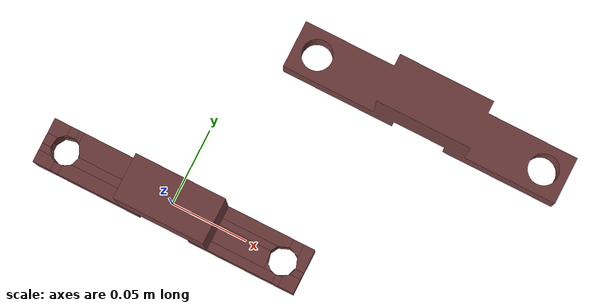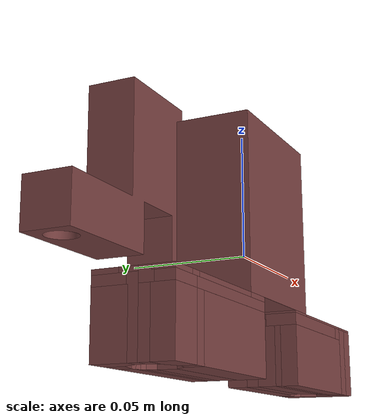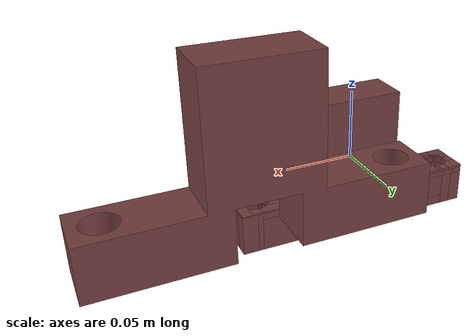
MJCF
<?xml version='1.0' encoding='utf-8'?>
<mujoco model="obj2">
  <asset>
    <mesh name="obj2" file="obj2.obj" scale="0.001 0.001 0.001" />
    <material name="mat2" rgba="0.45098 0.24314 0.24314 1" />
    <mesh name="obj1_p0" file="obj2_part_0.obj" scale="0.001 0.001 0.001" />
    <mesh name="obj1_p1" file="obj2_part_1.obj" scale="0.001 0.001 0.001" />
    <mesh name="obj1_p2" file="obj2_part_2.obj" scale="0.001 0.001 0.001" />
    <mesh name="obj1_p3" file="obj2_part_3.obj" scale="0.001 0.001 0.001" />
    <mesh name="obj1_p4" file="obj2_part_4.obj" scale="0.001 0.001 0.001" />
    <mesh name="obj1_p5" file="obj2_part_5.obj" scale="0.001 0.001 0.001" />
    <mesh name="obj1_p6" file="obj2_part_6.obj" scale="0.001 0.001 0.001" />
    <mesh name="obj1_p7" file="obj2_part_7.obj" scale="0.001 0.001 0.001" />
    <mesh name="obj1_p8" file="obj2_part_8.obj" scale="0.001 0.001 0.001" />
    <mesh name="obj1_p9" file="obj2_part_9.obj" scale="0.001 0.001 0.001" />
    <mesh name="obj1_p10" file="obj2_part_10.obj" scale="0.001 0.001 0.001" />
    <mesh name="obj1_p11" file="obj2_part_11.obj" scale="0.001 0.001 0.001" />
    <mesh name="obj1_p12" file="obj2_part_12.obj" scale="0.001 0.001 0.001" />
    <mesh name="obj1_p13" file="obj2_part_13.obj" scale="0.001 0.001 0.001" />
    <mesh name="obj1_p14" file="obj2_part_14.obj" scale="0.001 0.001 0.001" />
    <mesh name="obj1_p15" file="obj2_part_15.obj" scale="0.001 0.001 0.001" />
    <mesh name="obj1_p16" file="obj2_part_16.obj" scale="0.001 0.001 0.001" />
    <mesh name="obj1_p17" file="obj2_part_17.obj" scale="0.001 0.001 0.001" />
    <mesh name="obj1_p18" file="obj2_part_18.obj" scale="0.001 0.001 0.001" />
    <mesh name="obj1_p19" file="obj2_part_19.obj" scale="0.001 0.001 0.001" />
    <mesh name="obj1_p20" file="obj2_part_20.obj" scale="0.001 0.001 0.001" />
    <mesh name="obj1_p21" file="obj2_part_21.obj" scale="0.001 0.001 0.001" />
    <mesh name="obj1_p22" file="obj2_part_22.obj" scale="0.001 0.001 0.001" />
    <mesh name="obj1_p23" file="obj2_part_23.obj" scale="0.001 0.001 0.001" />
    <mesh name="obj1_p24" file="obj2_part_24.obj" scale="0.001 0.001 0.001" />
    <mesh name="obj1_p25" file="obj2_part_25.obj" scale="0.001 0.001 0.001" />
    <mesh name="obj1_p26" file="obj2_part_26.obj" scale="0.001 0.001 0.001" />
    <mesh name="obj1_p27" file="obj2_part_27.obj" scale="0.001 0.001 0.001" />
    <mesh name="obj1_p28" file="obj2_part_28.obj" scale="0.001 0.001 0.001" />
    <mesh name="obj1_p29" file="obj2_part_29.obj" scale="0.001 0.001 0.001" />
    <mesh name="obj1_p30" file="obj2_part_30.obj" scale="0.001 0.001 0.001" />
    <mesh name="obj1_p31" file="obj2_part_31.obj" scale="0.001 0.001 0.001" />
    <mesh name="obj1_p32" file="obj2_part_32.obj" scale="0.001 0.001 0.001" />
    <mesh name="obj1_p33" file="obj2_part_33.obj" scale="0.001 0.001 0.001" />
    <mesh name="obj1_p34" file="obj2_part_34.obj" scale="0.001 0.001 0.001" />
    <mesh name="obj1_p35" file="obj2_part_35.obj" scale="0.001 0.001 0.001" />
    <mesh name="obj1_p36" file="obj2_part_36.obj" scale="0.001 0.001 0.001" />
    <mesh name="obj1_p37" file="obj2_part_37.obj" scale="0.001 0.001 0.001" />
    <mesh name="obj1_p38" file="obj2_part_38.obj" scale="0.001 0.001 0.001" />
    <mesh name="obj1_p39" file="obj2_part_39.obj" scale="0.001 0.001 0.001" />
    <mesh name="obj1_p40" file="obj2_part_40.obj" scale="0.001 0.001 0.001" />
    <mesh name="obj1_p41" file="obj2_part_41.obj" scale="0.001 0.001 0.001" />
    <mesh name="obj1_p42" file="obj2_part_42.obj" scale="0.001 0.001 0.001" />
    <mesh name="obj1_p43" file="obj2_part_43.obj" scale="0.001 0.001 0.001" />
    <mesh name="obj1_p44" file="obj2_part_44.obj" scale="0.001 0.001 0.001" />
    <mesh name="obj1_p45" file="obj2_part_45.obj" scale="0.001 0.001 0.001" />
    <mesh name="obj1_p46" file="obj2_part_46.obj" scale="0.001 0.001 0.001" />
    <mesh name="obj1_p47" file="obj2_part_47.obj" scale="0.001 0.001 0.001" />
    <mesh name="obj1_p48" file="obj2_part_48.obj" scale="0.001 0.001 0.001" />
    <mesh name="obj1_p49" file="obj2_part_49.obj" scale="0.001 0.001 0.001" />
    <mesh name="obj1_p50" file="obj2_part_50.obj" scale="0.001 0.001 0.001" />
    <mesh name="obj1_p51" file="obj2_part_51.obj" scale="0.001 0.001 0.001" />
    <mesh name="obj1_p52" file="obj2_part_52.obj" scale="0.001 0.001 0.001" />
    <mesh name="obj1_p53" file="obj2_part_53.obj" scale="0.001 0.001 0.001" />
    <mesh name="obj1_p54" file="obj2_part_54.obj" scale="0.001 0.001 0.001" />
    <mesh name="obj1_p55" file="obj2_part_55.obj" scale="0.001 0.001 0.001" />
    <mesh name="obj1_p56" file="obj2_part_56.obj" scale="0.001 0.001 0.001" />
    <mesh name="obj1_p57" file="obj2_part_57.obj" scale="0.001 0.001 0.001" />
    <mesh name="obj1_p58" file="obj2_part_58.obj" scale="0.001 0.001 0.001" />
    <mesh name="obj1_p59" file="obj2_part_59.obj" scale="0.001 0.001 0.001" />
    <mesh name="obj1_p60" file="obj2_part_60.obj" scale="0.001 0.001 0.001" />
  </asset>
  <worldbody>
    <body>
      <body name="object">
        <inertial pos="0 0 0" mass="0.1" diaginertia="0.0001 0.0001 0.0001" />
        <geom name="visual" mesh="obj2" type="mesh" group="1" contype="0" conaffinity="0" material="mat2" />
        <geom name="col_0" mesh="obj1_p0" type="mesh" group="0" contype="1" conaffinity="1" friction="0.95 0.3 0.1" solimp="0.9 0.95 0.001" solref="0.02 1" condim="4" material="mat2" />
        <geom name="col_1" mesh="obj1_p1" type="mesh" group="0" contype="1" conaffinity="1" friction="0.95 0.3 0.1" solimp="0.9 0.95 0.001" solref="0.02 1" condim="4" material="mat2" />
        <geom name="col_2" mesh="obj1_p2" type="mesh" group="0" contype="1" conaffinity="1" friction="0.95 0.3 0.1" solimp="0.9 0.95 0.001" solref="0.02 1" condim="4" material="mat2" />
        <geom name="col_3" mesh="obj1_p3" type="mesh" group="0" contype="1" conaffinity="1" friction="0.95 0.3 0.1" solimp="0.9 0.95 0.001" solref="0.02 1" condim="4" material="mat2" />
        <geom name="col_4" mesh="obj1_p4" type="mesh" group="0" contype="1" conaffinity="1" friction="0.95 0.3 0.1" solimp="0.9 0.95 0.001" solref="0.02 1" condim="4" material="mat2" />
        <geom name="col_5" mesh="obj1_p5" type="mesh" group="0" contype="1" conaffinity="1" friction="0.95 0.3 0.1" solimp="0.9 0.95 0.001" solref="0.02 1" condim="4" material="mat2" />
        <geom name="col_6" mesh="obj1_p6" type="mesh" group="0" contype="1" conaffinity="1" friction="0.95 0.3 0.1" solimp="0.9 0.95 0.001" solref="0.02 1" condim="4" material="mat2" />
        <geom name="col_7" mesh="obj1_p7" type="mesh" group="0" contype="1" conaffinity="1" friction="0.95 0.3 0.1" solimp="0.9 0.95 0.001" solref="0.02 1" condim="4" material="mat2" />
        <geom name="col_8" mesh="obj1_p8" type="mesh" group="0" contype="1" conaffinity="1" friction="0.95 0.3 0.1" solimp="0.9 0.95 0.001" solref="0.02 1" condim="4" material="mat2" />
        <geom name="col_9" mesh="obj1_p9" type="mesh" group="0" contype="1" conaffinity="1" friction="0.95 0.3 0.1" solimp="0.9 0.95 0.001" solref="0.02 1" condim="4" material="mat2" />
        <geom name="col_10" mesh="obj1_p10" type="mesh" group="0" contype="1" conaffinity="1" friction="0.95 0.3 0.1" solimp="0.9 0.95 0.001" solref="0.02 1" condim="4" material="mat2" />
        <geom name="col_11" mesh="obj1_p11" type="mesh" group="0" contype="1" conaffinity="1" friction="0.95 0.3 0.1" solimp="0.9 0.95 0.001" solref="0.02 1" condim="4" material="mat2" />
        <geom name="col_12" mesh="obj1_p12" type="mesh" group="0" contype="1" conaffinity="1" friction="0.95 0.3 0.1" solimp="0.9 0.95 0.001" solref="0.02 1" condim="4" material="mat2" />
        <geom name="col_13" mesh="obj1_p13" type="mesh" group="0" contype="1" conaffinity="1" friction="0.95 0.3 0.1" solimp="0.9 0.95 0.001" solref="0.02 1" condim="4" material="mat2" />
        <geom name="col_14" mesh="obj1_p14" type="mesh" group="0" contype="1" conaffinity="1" friction="0.95 0.3 0.1" solimp="0.9 0.95 0.001" solref="0.02 1" condim="4" material="mat2" />
        <geom name="col_15" mesh="obj1_p15" type="mesh" group="0" contype="1" conaffinity="1" friction="0.95 0.3 0.1" solimp="0.9 0.95 0.001" solref="0.02 1" condim="4" material="mat2" />
        <geom name="col_16" mesh="obj1_p16" type="mesh" group="0" contype="1" conaffinity="1" friction="0.95 0.3 0.1" solimp="0.9 0.95 0.001" solref="0.02 1" condim="4" material="mat2" />
        <geom name="col_17" mesh="obj1_p17" type="mesh" group="0" contype="1" conaffinity="1" friction="0.95 0.3 0.1" solimp="0.9 0.95 0.001" solref="0.02 1" condim="4" material="mat2" />
        <geom name="col_18" mesh="obj1_p18" type="mesh" group="0" contype="1" conaffinity="1" friction="0.95 0.3 0.1" solimp="0.9 0.95 0.001" solref="0.02 1" condim="4" material="mat2" />
        <geom name="col_19" mesh="obj1_p19" type="mesh" group="0" contype="1" conaffinity="1" friction="0.95 0.3 0.1" solimp="0.9 0.95 0.001" solref="0.02 1" condim="4" material="mat2" />
        <geom name="col_20" mesh="obj1_p20" type="mesh" group="0" contype="1" conaffinity="1" friction="0.95 0.3 0.1" solimp="0.9 0.95 0.001" solref="0.02 1" condim="4" material="mat2" />
        <geom name="col_21" mesh="obj1_p21" type="mesh" group="0" contype="1" conaffinity="1" friction="0.95 0.3 0.1" solimp="0.9 0.95 0.001" solref="0.02 1" condim="4" material="mat2" />
        <geom name="col_22" mesh="obj1_p22" type="mesh" group="0" contype="1" conaffinity="1" friction="0.95 0.3 0.1" solimp="0.9 0.95 0.001" solref="0.02 1" condim="4" material="mat2" />
        <geom name="col_23" mesh="obj1_p23" type="mesh" group="0" contype="1" conaffinity="1" friction="0.95 0.3 0.1" solimp="0.9 0.95 0.001" solref="0.02 1" condim="4" material="mat2" />
        <geom name="col_24" mesh="obj1_p24" type="mesh" group="0" contype="1" conaffinity="1" friction="0.95 0.3 0.1" solimp="0.9 0.95 0.001" solref="0.02 1" condim="4" material="mat2" />
        <geom name="col_25" mesh="obj1_p25" type="mesh" group="0" contype="1" conaffinity="1" friction="0.95 0.3 0.1" solimp="0.9 0.95 0.001" solref="0.02 1" condim="4" material="mat2" />
        <geom name="col_26" mesh="obj1_p26" type="mesh" group="0" contype="1" conaffinity="1" friction="0.95 0.3 0.1" solimp="0.9 0.95 0.001" solref="0.02 1" condim="4" material="mat2" />
        <geom name="col_27" mesh="obj1_p27" type="mesh" group="0" contype="1" conaffinity="1" friction="0.95 0.3 0.1" solimp="0.9 0.95 0.001" solref="0.02 1" condim="4" material="mat2" />
        <geom name="col_28" mesh="obj1_p28" type="mesh" group="0" contype="1" conaffinity="1" friction="0.95 0.3 0.1" solimp="0.9 0.95 0.001" solref="0.02 1" condim="4" material="mat2" />
        <geom name="col_29" mesh="obj1_p29" type="mesh" group="0" contype="1" conaffinity="1" friction="0.95 0.3 0.1" solimp="0.9 0.95 0.001" solref="0.02 1" condim="4" material="mat2" />
        <geom name="col_30" mesh="obj1_p30" type="mesh" group="0" contype="1" conaffinity="1" friction="0.95 0.3 0.1" solimp="0.9 0.95 0.001" solref="0.02 1" condim="4" material="mat2" />
        <geom name="col_31" mesh="obj1_p31" type="mesh" group="0" contype="1" conaffinity="1" friction="0.95 0.3 0.1" solimp="0.9 0.95 0.001" solref="0.02 1" condim="4" material="mat2" />
        <geom name="col_32" mesh="obj1_p32" type="mesh" group="0" contype="1" conaffinity="1" friction="0.95 0.3 0.1" solimp="0.9 0.95 0.001" solref="0.02 1" condim="4" material="mat2" />
        <geom name="col_33" mesh="obj1_p33" type="mesh" group="0" contype="1" conaffinity="1" friction="0.95 0.3 0.1" solimp="0.9 0.95 0.001" solref="0.02 1" condim="4" material="mat2" />
        <geom name="col_34" mesh="obj1_p34" type="mesh" group="0" contype="1" conaffinity="1" friction="0.95 0.3 0.1" solimp="0.9 0.95 0.001" solref="0.02 1" condim="4" material="mat2" />
        <geom name="col_35" mesh="obj1_p35" type="mesh" group="0" contype="1" conaffinity="1" friction="0.95 0.3 0.1" solimp="0.9 0.95 0.001" solref="0.02 1" condim="4" material="mat2" />
        <geom name="col_36" mesh="obj1_p36" type="mesh" group="0" contype="1" conaffinity="1" friction="0.95 0.3 0.1" solimp="0.9 0.95 0.001" solref="0.02 1" condim="4" material="mat2" />
        <geom name="col_37" mesh="obj1_p37" type="mesh" group="0" contype="1" conaffinity="1" friction="0.95 0.3 0.1" solimp="0.9 0.95 0.001" solref="0.02 1" condim="4" material="mat2" />
        <geom name="col_38" mesh="obj1_p38" type="mesh" group="0" contype="1" conaffinity="1" friction="0.95 0.3 0.1" solimp="0.9 0.95 0.001" solref="0.02 1" condim="4" material="mat2" />
        <geom name="col_39" mesh="obj1_p39" type="mesh" group="0" contype="1" conaffinity="1" friction="0.95 0.3 0.1" solimp="0.9 0.95 0.001" solref="0.02 1" condim="4" material="mat2" />
        <geom name="col_40" mesh="obj1_p40" type="mesh" group="0" contype="1" conaffinity="1" friction="0.95 0.3 0.1" solimp="0.9 0.95 0.001" solref="0.02 1" condim="4" material="mat2" />
        <geom name="col_41" mesh="obj1_p41" type="mesh" group="0" contype="1" conaffinity="1" friction="0.95 0.3 0.1" solimp="0.9 0.95 0.001" solref="0.02 1" condim="4" material="mat2" />
        <geom name="col_42" mesh="obj1_p42" type="mesh" group="0" contype="1" conaffinity="1" friction="0.95 0.3 0.1" solimp="0.9 0.95 0.001" solref="0.02 1" condim="4" material="mat2" />
        <geom name="col_43" mesh="obj1_p43" type="mesh" group="0" contype="1" conaffinity="1" friction="0.95 0.3 0.1" solimp="0.9 0.95 0.001" solref="0.02 1" condim="4" material="mat2" />
        <geom name="col_44" mesh="obj1_p44" type="mesh" group="0" contype="1" conaffinity="1" friction="0.95 0.3 0.1" solimp="0.9 0.95 0.001" solref="0.02 1" condim="4" material="mat2" />
        <geom name="col_45" mesh="obj1_p45" type="mesh" group="0" contype="1" conaffinity="1" friction="0.95 0.3 0.1" solimp="0.9 0.95 0.001" solref="0.02 1" condim="4" material="mat2" />
        <geom name="col_46" mesh="obj1_p46" type="mesh" group="0" contype="1" conaffinity="1" friction="0.95 0.3 0.1" solimp="0.9 0.95 0.001" solref="0.02 1" condim="4" material="mat2" />
        <geom name="col_47" mesh="obj1_p47" type="mesh" group="0" contype="1" conaffinity="1" friction="0.95 0.3 0.1" solimp="0.9 0.95 0.001" solref="0.02 1" condim="4" material="mat2" />
        <geom name="col_48" mesh="obj1_p48" type="mesh" group="0" contype="1" conaffinity="1" friction="0.95 0.3 0.1" solimp="0.9 0.95 0.001" solref="0.02 1" condim="4" material="mat2" />
        <geom name="col_49" mesh="obj1_p49" type="mesh" group="0" contype="1" conaffinity="1" friction="0.95 0.3 0.1" solimp="0.9 0.95 0.001" solref="0.02 1" condim="4" material="mat2" />
        <geom name="col_50" mesh="obj1_p50" type="mesh" group="0" contype="1" conaffinity="1" friction="0.95 0.3 0.1" solimp="0.9 0.95 0.001" solref="0.02 1" condim="4" material="mat2" />
        <geom name="col_51" mesh="obj1_p51" type="mesh" group="0" contype="1" conaffinity="1" friction="0.95 0.3 0.1" solimp="0.9 0.95 0.001" solref="0.02 1" condim="4" material="mat2" />
        <geom name="col_52" mesh="obj1_p52" type="mesh" group="0" contype="1" conaffinity="1" friction="0.95 0.3 0.1" solimp="0.9 0.95 0.001" solref="0.02 1" condim="4" material="mat2" />
        <geom name="col_53" mesh="obj1_p53" type="mesh" group="0" contype="1" conaffinity="1" friction="0.95 0.3 0.1" solimp="0.9 0.95 0.001" solref="0.02 1" condim="4" material="mat2" />
        <geom name="col_54" mesh="obj1_p54" type="mesh" group="0" contype="1" conaffinity="1" friction="0.95 0.3 0.1" solimp="0.9 0.95 0.001" solref="0.02 1" condim="4" material="mat2" />
        <geom name="col_55" mesh="obj1_p55" type="mesh" group="0" contype="1" conaffinity="1" friction="0.95 0.3 0.1" solimp="0.9 0.95 0.001" solref="0.02 1" condim="4" material="mat2" />
        <geom name="col_56" mesh="obj1_p56" type="mesh" group="0" contype="1" conaffinity="1" friction="0.95 0.3 0.1" solimp="0.9 0.95 0.001" solref="0.02 1" condim="4" material="mat2" />
        <geom name="col_57" mesh="obj1_p57" type="mesh" group="0" contype="1" conaffinity="1" friction="0.95 0.3 0.1" solimp="0.9 0.95 0.001" solref="0.02 1" condim="4" material="mat2" />
        <geom name="col_58" mesh="obj1_p58" type="mesh" group="0" contype="1" conaffinity="1" friction="0.95 0.3 0.1" solimp="0.9 0.95 0.001" solref="0.02 1" condim="4" material="mat2" />
        <geom name="col_59" mesh="obj1_p59" type="mesh" group="0" contype="1" conaffinity="1" friction="0.95 0.3 0.1" solimp="0.9 0.95 0.001" solref="0.02 1" condim="4" material="mat2" />
        <geom name="col_60" mesh="obj1_p60" type="mesh" group="0" contype="1" conaffinity="1" friction="0.95 0.3 0.1" solimp="0.9 0.95 0.001" solref="0.02 1" condim="4" material="mat2" />
      </body>
      <site name="bottom_site" pos="0 0 -0.025" size="0.005" rgba="0 0 0 0" />
      <site name="top_site" pos="0 0 0.025" size="0.005" rgba="0 0 0 0" />
      <site name="horizontal_radius_site" pos="0.03 0.03 0" size="0.005" rgba="0 0 0 0" />
    </body>
  </worldbody>
</mujoco>
